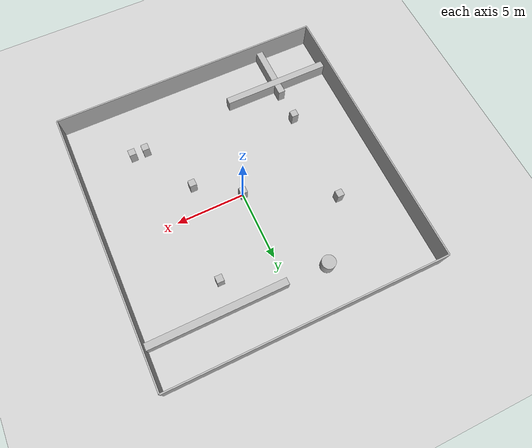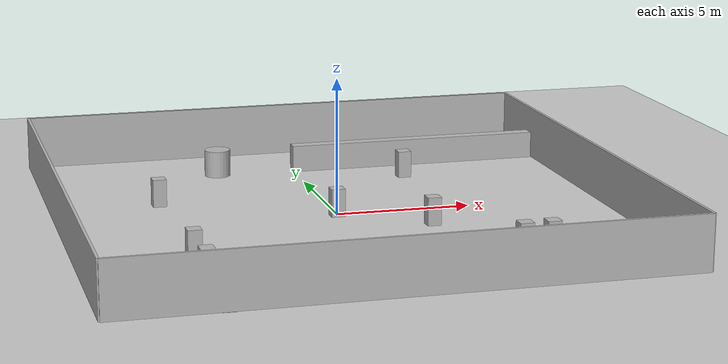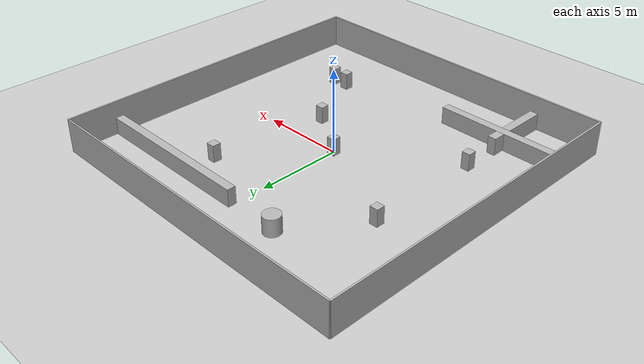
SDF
<?xml version="1.0" ?>
<sdf version="1.6">
  <world name="pursuit_world">
    <gui fullscreen="0">
      <camera name="user_camera">
        <pose>0 0 15 0 1.5707 1.5707</pose>
        <view_controller>orbit</view_controller>
        <projection_type>orthographic</projection_type>
      </camera>
    </gui>
    <physics name="1ms" type="ignored">
      <max_step_size>0.001</max_step_size>
      <real_time_factor>15.0</real_time_factor>
      <real_time_update_rate>1000</real_time_update_rate>
    </physics>
    <plugin
      filename="gz-sim-physics-system"
      name="gz::sim::systems::Physics">
    </plugin>
    <plugin
      filename="gz-sim-user-commands-system"
      name="gz::sim::systems::UserCommands">
    </plugin>
    <plugin
      filename="gz-sim-scene-broadcaster-system"
      name="gz::sim::systems::SceneBroadcaster">
    </plugin>
    <plugin
      filename="gz-sim-contact-system"
      name="gz::sim::systems::Contact">
    </plugin>
    <plugin
      filename="gz-sim-sensors-system"
      name="gz::sim::systems::Sensors">
		    <render_engine>ogre2</render_engine>
		</plugin>

    <light type="directional" name="sun">
      <cast_shadows>true</cast_shadows>
      <pose>0 0 10 0 0 0</pose>
      <diffuse>0.8 0.8 0.8 1</diffuse>
      <specular>0.2 0.2 0.2 1</specular>
      <attenuation>
        <range>1000</range>
        <constant>0.9</constant>
        <linear>0.01</linear>
        <quadratic>0.001</quadratic>
      </attenuation>
      <direction>-0.5 0.1 -0.9</direction>
    </light>

    <model name="ground_plane">
      <static>true</static>
      <link name="link">
        <collision name="collision">
          <geometry>
            <plane>
              <normal>0 0 1</normal>
              <size>100 100</size>
            </plane>
          </geometry>
        </collision>
        <visual name="visual">
          <geometry>
            <plane>
              <normal>0 0 1</normal>
              <size>100 100</size>
            </plane>
          </geometry>
          <material>
            <ambient>0.8 0.8 0.8 1</ambient>
            <diffuse>0.8 0.8 0.8 1</diffuse>
            <specular>0.8 0.8 0.8 1</specular>
          </material>
        </visual>
      </link>
    </model>

    <model name="obstacles">
      <static>true</static>

      <link name="obstacle_1">
        <pose>0 0 0 0 0 0</pose>
        <collision name="collision">
          <geometry>
            <box>
              <size>0.5 0.5 2</size>
            </box>
          </geometry>
        </collision>
        <visual name="visual">
          <geometry>
            <box>
              <size>0.5 0.5 2</size>
            </box>
          </geometry>
        </visual>
      </link>

      <link name="obstacle_2">
        <pose>4 5 0 0 0 0</pose>
        <collision name="collision">
          <geometry>
            <box>
              <size>0.5 0.5 2</size>
            </box>
          </geometry>
        </collision>
        <visual name="visual">
          <geometry>
            <box>
              <size>0.5 0.5 2</size>
            </box>
          </geometry>
        </visual>
      </link>

      <link name="obstacle_3">
        <pose>3 -2 0 0 0 0</pose>
        <collision name="collision">
          <geometry>
            <box>
              <size>0.5 0.5 2</size>
            </box>
          </geometry>
        </collision>
        <visual name="visual">
          <geometry>
            <box>
              <size>0.5 0.5 2</size>
            </box>
          </geometry>
        </visual>
      </link>

      <link name="obstacle_4">
        <pose>-6 3 0 0 0 0</pose>
        <collision name="collision">
          <geometry>
            <box>
              <size>0.5 0.5 2</size>
            </box>
          </geometry>
        </collision>
        <visual name="visual">
          <geometry>
            <box>
              <size>0.5 0.5 2</size>
            </box>
          </geometry>
        </visual>
      </link>

      <link name="obstacle_5">
        <pose>-6 -4 0 0 0 0</pose>
        <collision name="collision">
          <geometry>
            <box>
              <size>0.5 0.5 2</size>
            </box>
          </geometry>
        </collision>
        <visual name="visual">
          <geometry>
            <box>
              <size>0.5 0.5 2</size>
            </box>
          </geometry>
        </visual>
      </link>

      <link name="obstacle_6">
        <pose>6 -6 0 0 0 0</pose>
        <collision name="collision">
          <geometry>
            <box>
              <size>0.5 0.5 2</size>
            </box>
          </geometry>
        </collision>
        <visual name="visual">
          <geometry>
            <box>
              <size>0.5 0.5 2</size>
            </box>
          </geometry>
        </visual>
      </link>

      <link name="obstacle_7">
        <pose>5 -6 0 0 0 0</pose>
        <collision name="collision">
          <geometry>
            <box>
              <size>0.5 0.5 2</size>
            </box>
          </geometry>
        </collision>
        <visual name="visual">
          <geometry>
            <box>
              <size>0.5 0.5 2</size>
            </box>
          </geometry>
        </visual>
      </link>

      <link name="obstacle_8">
        <pose>-3 7 0 0 0 0</pose>
        <collision name="collision">
          <geometry>
            <cylinder>
              <radius>0.5</radius>
              <length>2.0</length>
            </cylinder>
          </geometry>
        </collision>
        <visual name="visual">
          <geometry>
            <cylinder>
              <radius>0.5</radius>
              <length>2.0</length>
            </cylinder>
          </geometry>
        </visual>
      </link>

      <link name="obstacle_9">
        <pose>-6 -7 0 0 0 0</pose>
        <collision name="collision">
          <geometry>
            <box>
              <size>8 0.5 2</size>
            </box>
          </geometry>
        </collision>
        <visual name="visual">
          <geometry>
            <box>
              <size>8 0.5 2</size>
            </box>
          </geometry>
        </visual>
      </link>

      <link name="obstacle_10">
        <pose>-6 -8 0 0 0 0</pose>
        <collision name="collision">
          <geometry>
            <box>
              <size>0.5 4 2</size>
            </box>
          </geometry>
        </collision>
        <visual name="visual">
          <geometry>
            <box>
              <size>0.5 4 2</size>
            </box>
          </geometry>
        </visual>
      </link>

      <link name="obstacle_11">
        <pose>5 7 0 0 0 0</pose>
        <collision name="collision">
          <geometry>
            <box>
              <size>10 0.5 2</size>
            </box>
          </geometry>
        </collision>
        <visual name="visual">
          <geometry>
            <box>
              <size>10 0.5 2</size>
            </box>
          </geometry>
        </visual>
      </link>
    </model>

    <model name="bounding_walls">
      <static>true</static>

      <!-- North Wall -->
      <link name="north_wall">
        <pose>0 10 1 0 0 0</pose>
        <collision name="collision">
          <geometry>
            <box>
              <size>20 0.1 2</size>
            </box>
          </geometry>
        </collision>
        <visual name="visual">
          <geometry>
            <box>
              <size>20 0.1 2</size>
            </box>
          </geometry>
        </visual>
      </link>

      <!-- South Wall -->
      <link name="south_wall">
        <pose>0 -10 1 0 0 0</pose>
        <collision name="collision">
          <geometry>
            <box>
              <size>20 0.1 2</size>
            </box>
          </geometry>
        </collision>
        <visual name="visual">
          <geometry>
            <box>
              <size>20 0.1 2</size>
            </box>
          </geometry>
        </visual>
      </link>

      <!-- East Wall -->
      <link name="east_wall">
        <pose>10 0 1 0 0 1.5707</pose>
        <collision name="collision">
          <geometry>
            <box>
              <size>20 0.1 2</size>
            </box>
          </geometry>
        </collision>
        <visual name="visual">
          <geometry>
            <box>
              <size>20 0.1 2</size>
            </box>
          </geometry>
        </visual>
      </link>

      <!-- West Wall -->
      <link name="west_wall">
        <pose>-10 0 1 0 0 1.5707</pose>
        <collision name="collision">
          <geometry>
            <box>
              <size>20 0.1 2</size>
            </box>
          </geometry>
        </collision>
        <visual name="visual">
          <geometry>
            <box>
              <size>20 0.1 2</size>
            </box>
          </geometry>
        </visual>
      </link>
    </model>
  </world>
</sdf>
